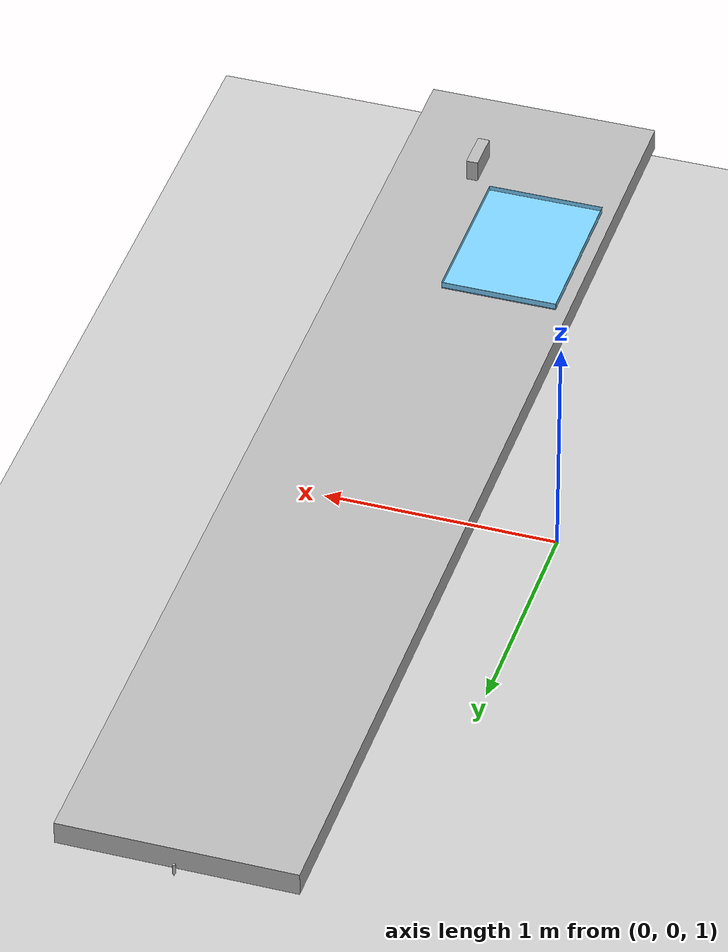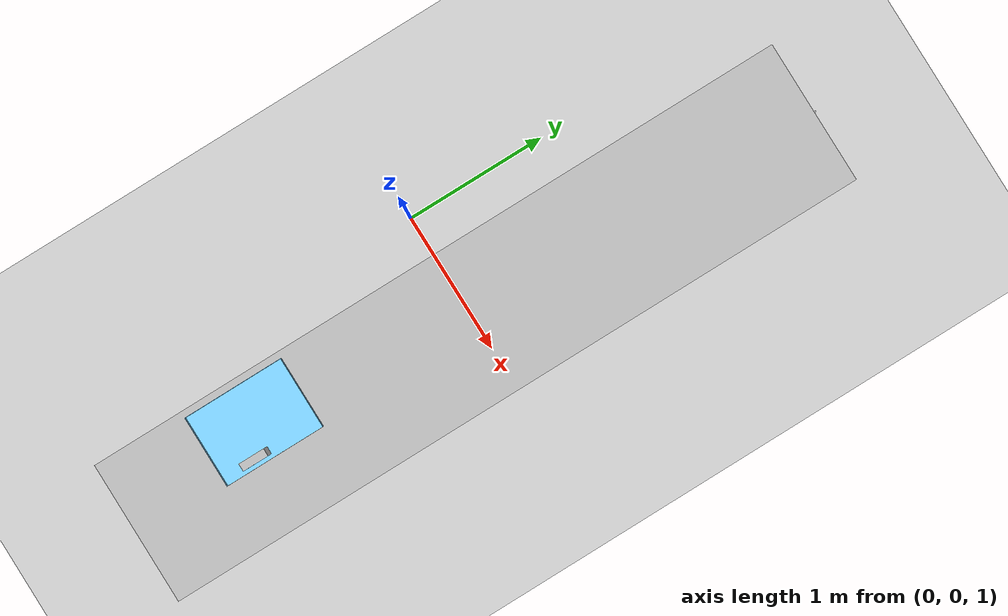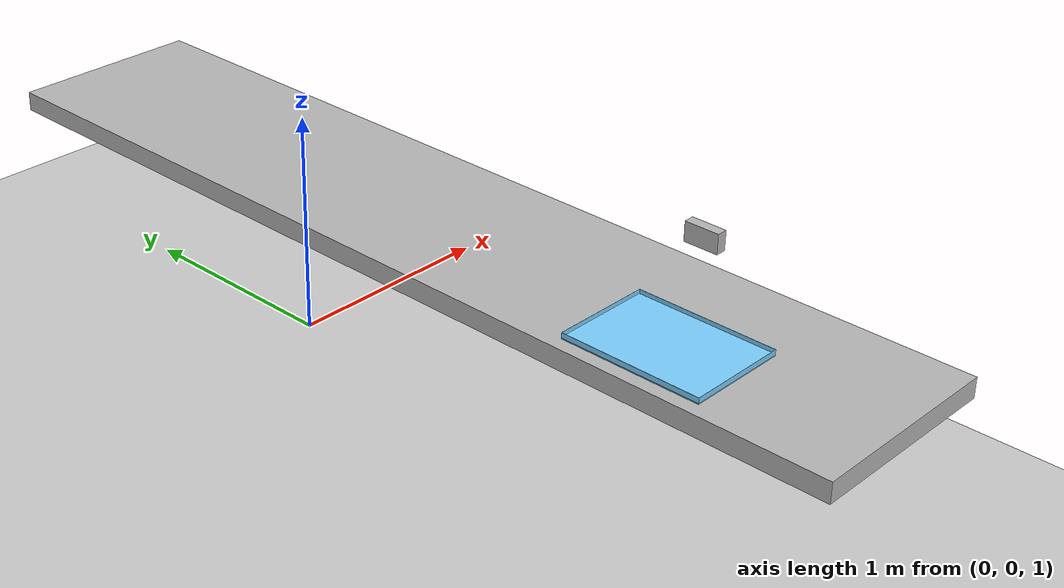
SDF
<sdf version="1.5">
 <world name="simple_workcell">
  <include><uri>model://sun</uri></include>
  <include><uri>model://ground_plane</uri></include>
  <include><uri>model://conveyor_belt</uri><pose>0.8 -2.5 1.2 0 0 0</pose></include>
  <include><uri>model://proximity_sensor</uri><pose>0.8 2.53 1.172 0 -1.5708 0</pose></include>
  <include><uri>model://laser_profiler</uri><pose>0.8 -1.5 1.7 0 1.5708 -1.5708</pose></include>
  <include><uri>model://kit_tray</uri><pose>0.6 -1.5 1.27 0 0 0</pose></include>
  <plugin filename="libPopulationPlugin.so" name="populate_conveyor">
   <loop_forever>true</loop_forever>
   <frame>conveyor_belt</frame>
   <object_sequence>
    <object><time>4.0</time><type>coke_can</type><pose>0. 0.1 0 0 0 0</pose></object>
    <object><time>8.0</time><type>cordless_drill</type><pose>0. 0.2 0 0 0 0</pose></object>
    <object><time>12.0</time><type>beer</type><pose>0. 0.1 0 0 0 0</pose></object>
   </object_sequence>
  </plugin>
  <plugin filename="libROSAriacTaskManagerPlugin.so" name="task_manager">
   <robot_namespace>ariac_task_manager</robot_namespace>
   <team_start_service_name>/ariac/start_competition</team_start_service_name>
   <conveyor_activation_topic>~/conveyor/control</conveyor_activation_topic>
   <goals_topic>/ariac/orders</goals_topic>
   <goal>
    <start_time>0.0</start_time>
    <kit>
     <object><type>coke_can</type><pose>-1 2.5 0 0 0 0</pose></object>
     <object><type>cordless_drill</type><pose>-1 2.5 0 0 0 0</pose></object>
     <object><type>beer</type><pose>-1 2.5 0 0 0 0</pose></object>
    </kit>
    <kit>
     <object><type>coke_can</type><pose>-1 2.5 0 0 0 0</pose></object>
     <object><type>cordless_drill</type><pose>-1 2.5 0 0 0 0</pose></object>
     <object><type>beer</type><pose>-1 2.5 0 0 0 0</pose></object>
    </kit>
   </goal>
  </plugin>
 </world>
</sdf>

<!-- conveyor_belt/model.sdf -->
<sdf version="1.6">
    <!-- the origin of this model is at the middle of the 'top' of the belt -->
    <model name="conveyor_belt">
        <static>true</static>
        <plugin name="conveyor_belt_plugin" filename="libROSConveyorBeltPlugin.so">
            <belt_velocity>1.</belt_velocity>
            <velocity_axis>0 1 0</velocity_axis>
            <contact_sensor_name>conveyor_belt_contact</contact_sensor_name>
        </plugin>
        <link name="belt">
            <pose>0 2.5 0 0 0 0</pose>
            <sensor name='conveyor_belt_contact' type='contact'>
                <update_rate>10</update_rate>
                <contact>
                    <collision>belt_collision</collision>
                </contact>
            </sensor>
            <inertial>
                <mass>10</mass>
                <inertia>
                    <ixx>20.841</ixx>
                    <ixy>0</ixy>
                    <ixz>0</ixz>
                    <iyy>0.8417</iyy>
                    <iyz>0</iyz>
                    <izz>21.66667</izz>
                </inertia>
            </inertial>
            <collision name="belt_collision">
            <geometry>
                <box>
                <size>1 5 0.1</size>
                </box>
            </geometry>
            <surface>
                <friction>
                    <ode>
                        <mu>0.0</mu>
                        <mu2>0.0</mu2>
                    </ode>
                    <torsional>
                        <coefficient>1000.0</coefficient>
                        <patch_radius>0.1</patch_radius>
                    </torsional>
                </friction>
            </surface>
            </collision>
            <visual name="visual">
            <geometry>
                <box>
                <size>1 5 0.1</size>
                </box>
            </geometry>
            </visual>
        </link>
    </model>
</sdf>

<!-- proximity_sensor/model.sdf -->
<sdf version="1.6">
  <model name="proximity_sick_mm12">
    <link name="body">
      <visual name="visual">
        <pose>0 0 0 0 1.5708 0</pose>
        <geometry>
          <cylinder>
            <radius>0.006</radius> <!-- diameter of sensing head -->
            <length>0.046</length> <!-- length of sensor body -->
          </cylinder>
        </geometry>
      </visual>
      <collision name="collision">
        <pose>0 0 0 0 1.5708 0</pose>
        <geometry>
          <cylinder>
            <radius>0.006</radius> <!-- diameter of sensing head -->
            <length>0.046</length> <!-- length of sensor body -->
          </cylinder>
        </geometry>
      </collision>
      <sensor name="proximity_sensor" type="ray">
        <plugin name="proximity_ray_plugin" filename="libROSProximityRayPlugin.so" >
          <robotNamespace>ariac</robotNamespace>
          <time_delay>0.02</time_delay><!-- this modifies the update rate of the ray sensor -->
          <!-- the ray sensor doesn't have setters for these yet unfortunately so they have to be set in the ray tags -->
        </plugin>

        <!-- using min angle of 0.005: -->
        <!-- dx = diameter / 0.01 - length -->
        <pose>-1.154 0 0 0 0 0</pose>                   <!-- -dx 0 0 0 0 0 -->
        <ray>
          <range>
            <min>1.214</min>                            <!-- dx + min range -->
            <max>1.274</max>                            <!-- dx + max range -->
            <resolution>0.001</resolution>
          </range>

          <!-- nothing below this line really needs to be modified upon change of sensor model -->

          <scan>
            <horizontal>
              <samples>10</samples>
              <resolution>1</resolution>
              <min_angle>-0.005</min_angle>
              <max_angle>0.005</max_angle>
            </horizontal>
            <vertical>
              <samples>10</samples>
              <resolution>1</resolution>
              <min_angle>-0.005</min_angle>
              <max_angle>0.005</max_angle>
            </vertical>
          </scan>
          <noise>
            <type>gaussian</type>
            <mean>0.0</mean>
            <stddev>0.01</stddev>
          </noise>
        </ray>

        <always_on>1</always_on>
        <visualize>false</visualize>
      </sensor>
      <gravity>false</gravity>
      <inertial>
        <mass>0.1</mass>
      </inertial>
    </link>
    <link name="cord">
      <gravity>false</gravity>
      <visual name="visual">
        <pose>-0.025 0 0 0 1.5708 0</pose>
        <geometry>
          <cylinder>
            <radius>0.001</radius> <!-- diameter of sensing head -->
            <length>0.02</length> <!-- length of sensor body -->
          </cylinder>
        </geometry>
      </visual>
      <collision name="collision">
        <pose>-0.025 0 0 0 1.5708 0</pose>
        <geometry>
          <cylinder>
            <radius>0.001</radius> <!-- diameter of sensing head -->
            <length>0.02</length> <!-- length of sensor body -->
          </cylinder>
        </geometry>
      </collision>
    </link>
  </model>
</sdf>

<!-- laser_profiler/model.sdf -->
<sdf version="1.6">
  <model name="laser-profiler-cognex-ds1101">
    <link name="link">
      <visual name="body">
        <geometry>
          <box>
            <size>0.093 0.05 0.167</size>
          </box>
        </geometry>
      </visual>
      <sensor name="laser_profiler" type="ray">
        <pose>0 0 0.06 0 0 0</pose>
        <plugin name="proximity_ray_plugin" filename="libgazebo_ros_laser.so" >
          <robotNamespace>ariac</robotNamespace>
          <frameName>laser_profiler</frameName>
          <topicName>laser_profiler</topicName>
        </plugin>
        <ray>
          <range>
            <min>0.135</min>
            <max>0.355</max>
            <resolution>0.001</resolution>
          </range>
          <scan>
            <horizontal>
              <samples>100</samples>
              <resolution>1</resolution>
              <min_angle>-0.235</min_angle>
              <max_angle>0.235</max_angle>
            </horizontal>
          </scan>

          <!-- nothing below this line really needs to be modified upon change of sensor model -->

          <noise>
            <type>gaussian</type>
            <mean>0.0</mean>
            <stddev>0.001</stddev>
          </noise>
        </ray>

        <always_on>1</always_on>
        <visualize>true</visualize>
      </sensor>
      <collision name='collision'>
        <pose>0 0 0 0 0 0</pose>
        <geometry>
          <box>
            <size>0.093 0.05 0.167</size>
          </box>
        </geometry>
      </collision>
      <gravity>false</gravity>
      <inertial>
        <mass>0.1</mass>
      </inertial>
    </link>
  </model>
</sdf>

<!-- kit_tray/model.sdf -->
<sdf version="1.6">
  <model name="kit_tray">
    <static>false</static>
    <link name="tray">
      <sensor name='kit_tray_contact' type='contact'>
        <update_rate>1</update_rate>
        <contact>
          <collision>tray_collision</collision>
        </contact>
      </sensor>
      <gravity>false</gravity>
      <collision name="tray_collision">
        <geometry>
          <box>
            <size>0.5 0.7 0.01</size>
          </box>
        </geometry>
      </collision>
      <collision name="tray_collision1">
        <pose>0.25 0 0.0127 0 0 0</pose>
        <geometry>
          <box>
            <size>0.001 0.7 0.0254</size>
          </box>
        </geometry>
      </collision>
      <visual name="tray_visual1">
        <pose>0.25 0 0.0127 0 0 0</pose>
        <geometry>
          <box>
            <size>0.001 0.7 0.0254</size>
          </box>
        </geometry>
        <material>
          <ambient>0.48627451 0.819607843 1 1</ambient>
          <diffuse>0.48627451 0.819607843 1 1</diffuse>
        </material>
      </visual>

      <collision name="tray_collision2">
        <pose>-0.25 0 0.0127 0 0 0</pose>
        <geometry>
          <box>
            <size>0.001 0.7 0.0254</size>
          </box>
        </geometry>
      </collision>
      <visual name="tray_visual2">
        <pose>-0.25 0 0.0127 0 0 0</pose>
        <geometry>
          <box>
            <size>0.001 0.7 0.0254</size>
          </box>
        </geometry>
        <material>
          <ambient>0.48627451 0.819607843 1 1</ambient>
          <diffuse>0.48627451 0.819607843 1 1</diffuse>
        </material>
      </visual>

      <collision name="tray_collision3">
        <pose>0 0.35 0.0127 0 0 0</pose>
        <geometry>
          <box>
            <size>0.5 0.001 0.0254</size>
          </box>
        </geometry>
      </collision>
      <visual name="tray_visual3">
        <pose>0 0.35 0.0127 0 0 0</pose>
        <geometry>
          <box>
            <size>0.5 0.001 0.0254</size>
          </box>
        </geometry>
        <material>
          <ambient>0.48627451 0.819607843 1 1</ambient>
          <diffuse>0.48627451 0.819607843 1 1</diffuse>
        </material>
      </visual>

      <collision name="tray_collision4">
        <pose>0 -0.35 0.0127 0 0 0</pose>
        <geometry>
          <box>
            <size>0.5 0.001 0.0254</size>
          </box>
        </geometry>
      </collision>
      <visual name="tray_visual4">
        <pose>0 -0.35 0.0127 0 0 0</pose>
        <geometry>
          <box>
            <size>0.5 0.001 0.0254</size>
          </box>
        </geometry>
        <material>
          <ambient>0.48627451 0.819607843 1 1</ambient>
          <diffuse>0.48627451 0.819607843 1 1</diffuse>
        </material>
      </visual>

      <visual name="visual">
        <geometry>
          <box>
            <size>0.5 0.7 0.01</size>
          </box>
        </geometry>
        <material>
          <ambient>0.48627451 0.819607843 1 1</ambient>
          <diffuse>0.48627451 0.819607843 1 1</diffuse>
        </material>
      </visual>
    </link>
    <allow_auto_disable>0</allow_auto_disable>
  </model>
</sdf>
